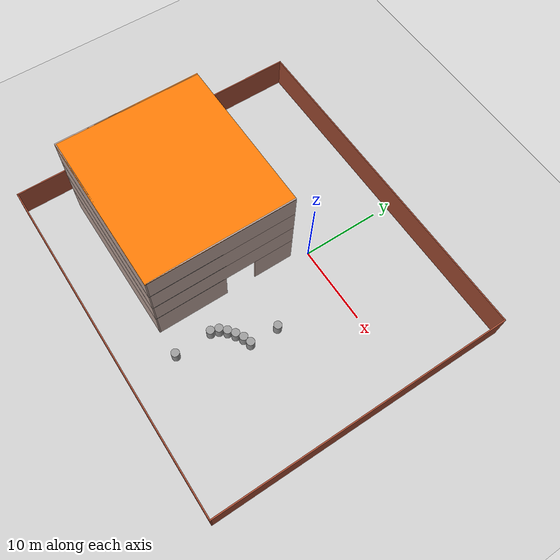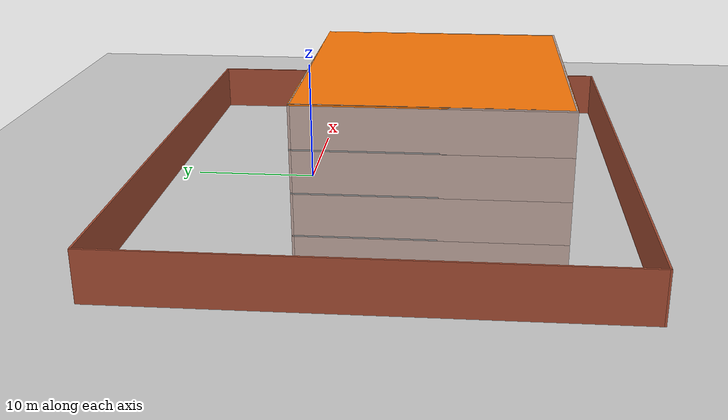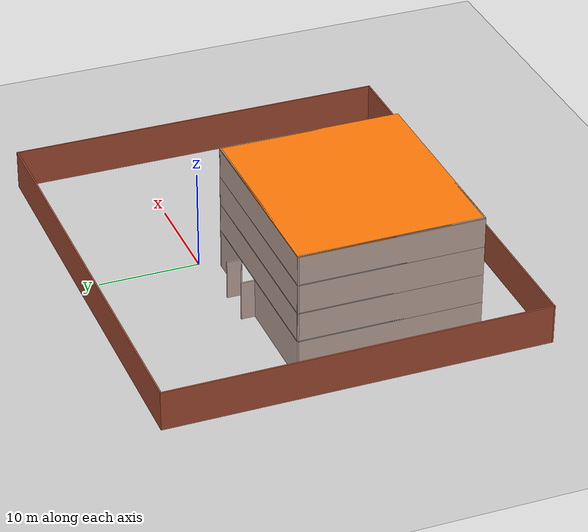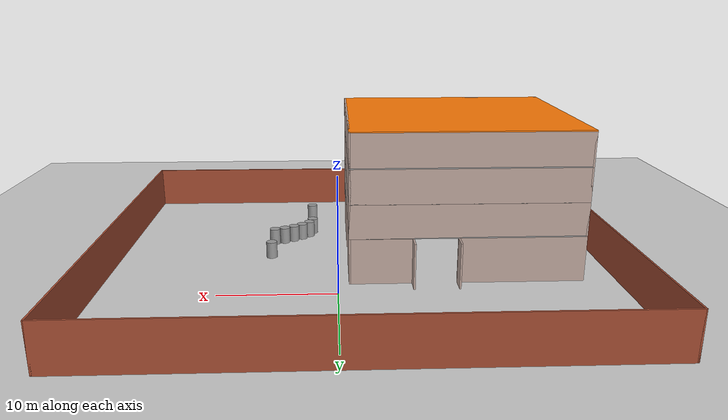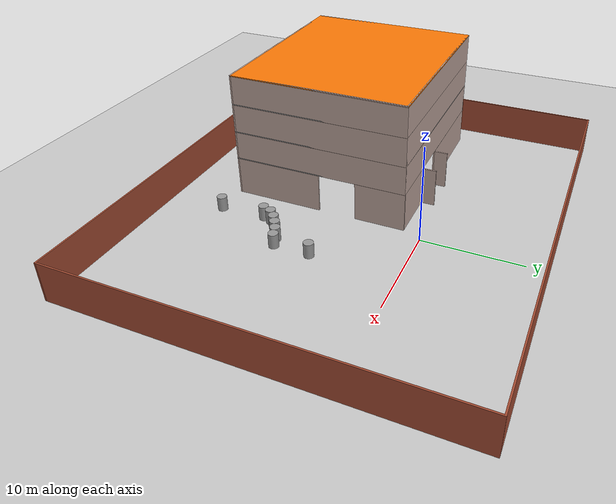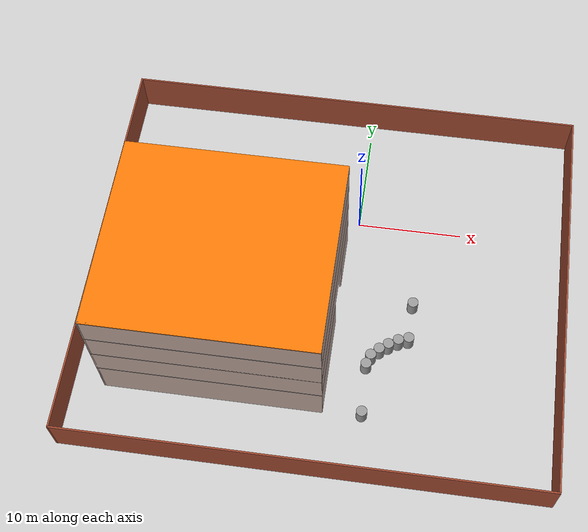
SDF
<sdf version="1.6">
 <world name="default">
  <model name="ground_plane">
   <static>1</static>
   <link name="link">
    <collision name="collision">
     <geometry><plane><normal>0 0 1</normal><size>100 100</size></plane></geometry>
     <surface><friction><ode><mu>100</mu><mu2>50</mu2></ode></friction></surface>
    </collision>
    <visual name="visual">
     <cast_shadows>0</cast_shadows>
     <geometry><plane><normal>0 0 1</normal><size>100 100</size></plane></geometry>
     <material>
      <script><uri>file://media/materials/scripts/gazebo.material</uri><name>Gazebo/Grey</name></script>
     </material>
    </visual>
   </link>
  </model>
  <model name="building2">
   <pose>-11 -10.325 0 0 -0 0</pose>
   <link name="Floor_0">
    <collision name="Floor_0_Collision">
     <geometry><box><size>20.15 18.15 0.1</size></box></geometry>
     <pose>0 0 0.05 0 -0 0</pose>
    </collision>
    <visual name="Floor_0_Visual">
     <pose>0 0 0.05 0 -0 0</pose>
     <geometry><box><size>20.15 18.15 0.1</size></box></geometry>
     <material>
      <script><uri>file://media/materials/scripts/gazebo.material</uri><name>Gazebo/Grey</name></script>
      <ambient>1 1 1 1</ambient>
     </material>
     <meta><layer>1</layer></meta>
    </visual>
    <pose>-0 -0.675 4 0 -0 0</pose>
   </link>
   <link name="Floor_2">
    <collision name="Floor_2_Collision">
     <geometry><box><size>20.15 18.15 0.1</size></box></geometry>
     <pose>0 0 0.05 0 -0 0</pose>
    </collision>
    <visual name="Floor_2_Visual">
     <pose>0 0 0.05 0 -0 0</pose>
     <geometry><box><size>20.15 18.15 0.1</size></box></geometry>
     <material>
      <script><uri>file://media/materials/scripts/gazebo.material</uri><name>Gazebo/Grey</name></script>
      <ambient>1 1 1 1</ambient>
     </material>
     <meta><layer>2</layer></meta>
    </visual>
    <pose>-0 -0.675 7 0 -0 0</pose>
   </link>
   <link name="Floor_3">
    <collision name="Floor_3_Collision">
     <geometry><box><size>20.15 18.15 0.1</size></box></geometry>
     <pose>0 0 0.05 0 -0 0</pose>
    </collision>
    <visual name="Floor_3_Visual">
     <pose>0 0 0.05 0 -0 0</pose>
     <geometry><box><size>20.15 18.15 0.1</size></box></geometry>
     <material>
      <script><uri>file://media/materials/scripts/gazebo.material</uri><name>Gazebo/Grey</name></script>
      <ambient>1 1 1 1</ambient>
     </material>
     <meta><layer>3</layer></meta>
    </visual>
    <pose>-0 -0.675 10 0 -0 0</pose>
   </link>
   <link name="Floor_8">
    <collision name="Floor_8_Collision">
     <geometry><box><size>20.15 18.15 0.1</size></box></geometry>
     <pose>0 0 0.05 0 -0 0</pose>
    </collision>
    <visual name="Floor_8_Visual">
     <pose>0 0 0.05 0 -0 0</pose>
     <geometry><box><size>20.15 18.15 0.1</size></box></geometry>
     <material>
      <script><uri>file://media/materials/scripts/gazebo.material</uri><name>Gazebo/Grey</name></script>
      <ambient>0.996078 0.47451 0.0196078 1</ambient>
     </material>
     <meta><layer>4</layer></meta>
    </visual>
    <pose>-0 -0.675 13 0 -0 0</pose>
   </link>
   <link name="Wall_11">
    <collision name="Wall_11_Collision">
     <geometry><box><size>1.5 0.15 4</size></box></geometry>
     <pose>0 0 2 0 -0 0</pose>
    </collision>
    <visual name="Wall_11_Visual">
     <pose>0 0 2 0 -0 0</pose>
     <geometry><box><size>1.5 0.15 4</size></box></geometry>
     <material>
      <script><uri>file://media/materials/scripts/gazebo.material</uri><name>Gazebo/Grey</name></script>
      <ambient>0.760784 0.662745 0.627451 1</ambient>
     </material>
     <meta><layer>0</layer></meta>
    </visual>
    <pose>0.8 9 0 0 -0 -1.5708</pose>
   </link>
   <link name="Wall_12">
    <collision name="Wall_12_Collision">
     <geometry><box><size>10.95 0.15 4</size></box></geometry>
     <pose>0 0 2 0 -0 0</pose>
    </collision>
    <visual name="Wall_12_Visual">
     <pose>0 0 2 0 -0 0</pose>
     <geometry><box><size>10.95 0.15 4</size></box></geometry>
     <material>
      <script><uri>file://media/materials/scripts/gazebo.material</uri><name>Gazebo/Grey</name></script>
      <ambient>0.760784 0.662745 0.627451 1</ambient>
     </material>
     <meta><layer>0</layer></meta>
    </visual>
    <pose>-4.6 8.325 0 0 -0 3.14159</pose>
   </link>
   <link name="Wall_14">
    <collision name="Wall_14_Collision">
     <geometry><box><size>18.15 0.15 4</size></box></geometry>
     <pose>0 0 2 0 -0 0</pose>
    </collision>
    <visual name="Wall_14_Visual">
     <pose>0 0 2 0 -0 0</pose>
     <geometry><box><size>18.15 0.15 4</size></box></geometry>
     <material>
      <script><uri>file://media/materials/scripts/gazebo.material</uri><name>Gazebo/Grey</name></script>
      <ambient>0.760784 0.662745 0.627451 1</ambient>
     </material>
     <meta><layer>0</layer></meta>
    </visual>
    <pose>-10 -0.675 0 0 -0 -1.5708</pose>
   </link>
   <link name="Wall_16">
    <collision name="Wall_16_Collision">
     <geometry><box><size>20.15 0.15 4</size></box></geometry>
     <pose>0 0 2 0 -0 0</pose>
    </collision>
    <visual name="Wall_16_Visual">
     <pose>0 0 2 0 -0 0</pose>
     <geometry><box><size>20.15 0.15 4</size></box></geometry>
     <material>
      <script><uri>file://media/materials/scripts/gazebo.material</uri><name>Gazebo/Grey</name></script>
      <ambient>0.760784 0.662745 0.627451 1</ambient>
     </material>
     <meta><layer>0</layer></meta>
    </visual>
    <pose>-0 -9.675 0 0 -0 0</pose>
   </link>
   <link name="Wall_24">
    <collision name="Wall_24_Collision">
     <geometry><box><size>18.15 0.15 3</size></box></geometry>
     <pose>0 0 1.5 0 -0 0</pose>
    </collision>
    <visual name="Wall_24_Visual">
     <pose>0 0 1.5 0 -0 0</pose>
     <geometry><box><size>18.15 0.15 3</size></box></geometry>
     <material>
      <script><uri>file://media/materials/scripts/gazebo.material</uri><name>Gazebo/Grey</name></script>
      <ambient>0.760784 0.662745 0.627451 1</ambient>
     </material>
     <meta><layer>1</layer></meta>
    </visual>
    <pose>-10 -0.675 4 0 -0 -1.5708</pose>
   </link>
   <link name="Wall_25">
    <collision name="Wall_25_Collision">
     <geometry><box><size>20.15 0.15 3</size></box></geometry>
     <pose>0 0 1.5 0 -0 0</pose>
    </collision>
    <visual name="Wall_25_Visual">
     <pose>0 0 1.5 0 -0 0</pose>
     <geometry><box><size>20.15 0.15 3</size></box></geometry>
     <material>
      <script><uri>file://media/materials/scripts/gazebo.material</uri><name>Gazebo/Grey</name></script>
      <ambient>0.760784 0.662745 0.627451 1</ambient>
     </material>
     <meta><layer>1</layer></meta>
    </visual>
    <pose>-0 -9.675 4 0 -0 0</pose>
   </link>
   <link name="Wall_31">
    <collision name="Wall_31_Collision">
     <geometry><box><size>20.15 0.15 3</size></box></geometry>
     <pose>0 0 1.5 0 -0 0</pose>
    </collision>
    <visual name="Wall_31_Visual">
     <pose>0 0 1.5 0 -0 0</pose>
     <geometry><box><size>20.15 0.15 3</size></box></geometry>
     <material>
      <script><uri>file://media/materials/scripts/gazebo.material</uri><name>Gazebo/Grey</name></script>
      <ambient>0.760784 0.662745 0.627451 1</ambient>
     </material>
     <meta><layer>1</layer></meta>
    </visual>
    <pose>-0 8.325 4 0 -0 0</pose>
   </link>
   <link name="Wall_33">
    <collision name="Wall_33_Collision">
     <geometry><box><size>18 0.15 3</size></box></geometry>
     <pose>0 0 1.5 0 -0 0</pose>
    </collision>
    <visual name="Wall_33_Visual">
     <pose>0 0 1.5 0 -0 0</pose>
     <geometry><box><size>18 0.15 3</size></box></geometry>
     <material>
      <script><uri>file://media/materials/scripts/gazebo.material</uri><name>Gazebo/Grey</name></script>
      <ambient>0.760784 0.662745 0.627451 1</ambient>
     </material>
     <meta><layer>1</layer></meta>
    </visual>
    <pose>10 -0.6 4 0 -0 -1.5708</pose>
   </link>
   <link name="Wall_4">
    <collision name="Wall_4_Collision">
     <geometry><box><size>5.15 0.15 4</size></box></geometry>
     <pose>0 0 2 0 -0 0</pose>
    </collision>
    <visual name="Wall_4_Visual">
     <pose>0 0 2 0 -0 0</pose>
     <geometry><box><size>5.15 0.15 4</size></box></geometry>
     <material>
      <script><uri>file://media/materials/scripts/gazebo.material</uri><name>Gazebo/Grey</name></script>
      <ambient>0.760784 0.662745 0.627451 1</ambient>
     </material>
     <meta><layer>0</layer></meta>
    </visual>
    <pose>10 5.825 0 0 -0 -1.5708</pose>
   </link>
   <link name="Wall_42">
    <collision name="Wall_42_Collision">
     <geometry><box><size>18.15 0.15 3</size></box></geometry>
     <pose>0 0 1.5 0 -0 0</pose>
    </collision>
    <visual name="Wall_42_Visual">
     <pose>0 0 1.5 0 -0 0</pose>
     <geometry><box><size>18.15 0.15 3</size></box></geometry>
     <material>
      <script><uri>file://media/materials/scripts/gazebo.material</uri><name>Gazebo/Grey</name></script>
      <ambient>0.760784 0.662745 0.627451 1</ambient>
     </material>
     <meta><layer>2</layer></meta>
    </visual>
    <pose>-10 -0.675 7 0 -0 -1.5708</pose>
   </link>
   <link name="Wall_43">
    <collision name="Wall_43_Collision">
     <geometry><box><size>20.15 0.15 3</size></box></geometry>
     <pose>0 0 1.5 0 -0 0</pose>
    </collision>
    <visual name="Wall_43_Visual">
     <pose>0 0 1.5 0 -0 0</pose>
     <geometry><box><size>20.15 0.15 3</size></box></geometry>
     <material>
      <script><uri>file://media/materials/scripts/gazebo.material</uri><name>Gazebo/Grey</name></script>
      <ambient>0.760784 0.662745 0.627451 1</ambient>
     </material>
     <meta><layer>2</layer></meta>
    </visual>
    <pose>-0 -9.675 7 0 -0 0</pose>
   </link>
   <link name="Wall_44">
    <collision name="Wall_44_Collision">
     <geometry><box><size>20.15 0.15 3</size></box></geometry>
     <pose>0 0 1.5 0 -0 0</pose>
    </collision>
    <visual name="Wall_44_Visual">
     <pose>0 0 1.5 0 -0 0</pose>
     <geometry><box><size>20.15 0.15 3</size></box></geometry>
     <material>
      <script><uri>file://media/materials/scripts/gazebo.material</uri><name>Gazebo/Grey</name></script>
      <ambient>0.760784 0.662745 0.627451 1</ambient>
     </material>
     <meta><layer>2</layer></meta>
    </visual>
    <pose>-0 8.325 7 0 -0 0</pose>
   </link>
   <link name="Wall_45">
    <collision name="Wall_45_Collision">
     <geometry><box><size>18 0.15 3</size></box></geometry>
     <pose>0 0 1.5 0 -0 0</pose>
    </collision>
    <visual name="Wall_45_Visual">
     <pose>0 0 1.5 0 -0 0</pose>
     <geometry><box><size>18 0.15 3</size></box></geometry>
     <material>
      <script><uri>file://media/materials/scripts/gazebo.material</uri><name>Gazebo/Grey</name></script>
      <ambient>0.760784 0.662745 0.627451 1</ambient>
     </material>
     <meta><layer>2</layer></meta>
    </visual>
    <pose>10 -0.6 7 0 -0 -1.5708</pose>
   </link>
   <link name="Wall_46">
    <collision name="Wall_46_Collision">
     <geometry><box><size>18.15 0.15 3</size></box></geometry>
     <pose>0 0 1.5 0 -0 0</pose>
    </collision>
    <visual name="Wall_46_Visual">
     <pose>0 0 1.5 0 -0 0</pose>
     <geometry><box><size>18.15 0.15 3</size></box></geometry>
     <material>
      <script><uri>file://media/materials/scripts/gazebo.material</uri><name>Gazebo/Grey</name></script>
      <ambient>0.760784 0.662745 0.627451 1</ambient>
     </material>
     <meta><layer>3</layer></meta>
    </visual>
    <pose>-10 -0.675 10 0 -0 -1.5708</pose>
   </link>
   <link name="Wall_47">
    <collision name="Wall_47_Collision">
     <geometry><box><size>20.15 0.15 3</size></box></geometry>
     <pose>0 0 1.5 0 -0 0</pose>
    </collision>
    <visual name="Wall_47_Visual">
     <pose>0 0 1.5 0 -0 0</pose>
     <geometry><box><size>20.15 0.15 3</size></box></geometry>
     <material>
      <script><uri>file://media/materials/scripts/gazebo.material</uri><name>Gazebo/Grey</name></script>
      <ambient>0.760784 0.662745 0.627451 1</ambient>
     </material>
     <meta><layer>3</layer></meta>
    </visual>
    <pose>-0 -9.675 10 0 -0 0</pose>
   </link>
   <link name="Wall_48">
    <collision name="Wall_48_Collision">
     <geometry><box><size>20.15 0.15 3</size></box></geometry>
     <pose>0 0 1.5 0 -0 0</pose>
    </collision>
    <visual name="Wall_48_Visual">
     <pose>0 0 1.5 0 -0 0</pose>
     <geometry><box><size>20.15 0.15 3</size></box></geometry>
     <material>
      <script><uri>file://media/materials/scripts/gazebo.material</uri><name>Gazebo/Grey</name></script>
      <ambient>0.760784 0.662745 0.627451 1</ambient>
     </material>
     <meta><layer>3</layer></meta>
    </visual>
    <pose>-0 8.325 10 0 -0 0</pose>
   </link>
   <link name="Wall_49">
    <collision name="Wall_49_Collision">
     <geometry><box><size>18 0.15 3</size></box></geometry>
     <pose>0 0 1.5 0 -0 0</pose>
    </collision>
    <visual name="Wall_49_Visual">
     <pose>0 0 1.5 0 -0 0</pose>
     <geometry><box><size>18 0.15 3</size></box></geometry>
     <material>
      <script><uri>file://media/materials/scripts/gazebo.material</uri><name>Gazebo/Grey</name></script>
      <ambient>0.760784 0.662745 0.627451 1</ambient>
     </material>
     <meta><layer>3</layer></meta>
    </visual>
    <pose>10 -0.6 10 0 -0 -1.5708</pose>
   </link>
   <link name="Wall_6">
    <collision name="Wall_6_Collision">
     <geometry><box><size>9.15 0.15 4</size></box></geometry>
     <pose>0 0 2 0 -0 0</pose>
    </collision>
    <visual name="Wall_6_Visual">
     <pose>0 0 2 0 -0 0</pose>
     <geometry><box><size>9.15 0.15 4</size></box></geometry>
     <material>
      <script><uri>file://media/materials/scripts/gazebo.material</uri><name>Gazebo/Grey</name></script>
      <ambient>0.760784 0.662745 0.627451 1</ambient>
     </material>
     <meta><layer>0</layer></meta>
    </visual>
    <pose>10 -5.175 0 0 -0 -1.5708</pose>
   </link>
   <link name="Wall_76">
    <collision name="Wall_76_Collision">
     <geometry><box><size>18.15 0.15 0.1</size></box></geometry>
     <pose>0 0 0.05 0 -0 0</pose>
    </collision>
    <visual name="Wall_76_Visual">
     <pose>0 0 0.05 0 -0 0</pose>
     <geometry><box><size>18.15 0.15 0.1</size></box></geometry>
     <material>
      <script><uri>file://media/materials/scripts/gazebo.material</uri><name>Gazebo/Grey</name></script>
      <ambient>0.760784 0.662745 0.627451 1</ambient>
     </material>
     <meta><layer>4</layer></meta>
    </visual>
    <pose>-10 -0.675 13 0 -0 -1.5708</pose>
   </link>
   <link name="Wall_77">
    <collision name="Wall_77_Collision">
     <geometry><box><size>20.15 0.15 0.1</size></box></geometry>
     <pose>0 0 0.05 0 -0 0</pose>
    </collision>
    <visual name="Wall_77_Visual">
     <pose>0 0 0.05 0 -0 0</pose>
     <geometry><box><size>20.15 0.15 0.1</size></box></geometry>
     <material>
      <script><uri>file://media/materials/scripts/gazebo.material</uri><name>Gazebo/Grey</name></script>
      <ambient>0.760784 0.662745 0.627451 1</ambient>
     </material>
     <meta><layer>4</layer></meta>
    </visual>
    <pose>-0 -9.675 13 0 -0 0</pose>
   </link>
   <link name="Wall_78">
    <collision name="Wall_78_Collision">
     <geometry><box><size>20.15 0.15 0.1</size></box></geometry>
     <pose>0 0 0.05 0 -0 0</pose>
    </collision>
    <visual name="Wall_78_Visual">
     <pose>0 0 0.05 0 -0 0</pose>
     <geometry><box><size>20.15 0.15 0.1</size></box></geometry>
     <material>
      <script><uri>file://media/materials/scripts/gazebo.material</uri><name>Gazebo/Grey</name></script>
      <ambient>0.760784 0.662745 0.627451 1</ambient>
     </material>
     <meta><layer>4</layer></meta>
    </visual>
    <pose>-0 8.325 13 0 -0 0</pose>
   </link>
   <link name="Wall_79">
    <collision name="Wall_79_Collision">
     <geometry><box><size>18 0.15 0.1</size></box></geometry>
     <pose>0 0 0.05 0 -0 0</pose>
    </collision>
    <visual name="Wall_79_Visual">
     <pose>0 0 0.05 0 -0 0</pose>
     <geometry><box><size>18 0.15 0.1</size></box></geometry>
     <material>
      <script><uri>file://media/materials/scripts/gazebo.material</uri><name>Gazebo/Grey</name></script>
      <ambient>0.760784 0.662745 0.627451 1</ambient>
     </material>
     <meta><layer>4</layer></meta>
    </visual>
    <pose>10 -0.6 13 0 -0 -1.5708</pose>
   </link>
   <link name="Wall_8">
    <collision name="Wall_8_Collision">
     <geometry><box><size>5.5 0.15 4</size></box></geometry>
     <pose>0 0 2 0 -0 0</pose>
    </collision>
    <visual name="Wall_8_Visual">
     <pose>0 0 2 0 -0 0</pose>
     <geometry><box><size>5.5 0.15 4</size></box></geometry>
     <material>
      <script><uri>file://media/materials/scripts/gazebo.material</uri><name>Gazebo/Grey</name></script>
      <ambient>0.760784 0.662745 0.627451 1</ambient>
     </material>
     <meta><layer>0</layer></meta>
    </visual>
    <pose>7.325 8.325 0 0 -0 3.14159</pose>
   </link>
   <link name="Wall_9">
    <collision name="Wall_9_Collision">
     <geometry><box><size>1.5 0.15 4</size></box></geometry>
     <pose>0 0 2 0 -0 0</pose>
    </collision>
    <visual name="Wall_9_Visual">
     <pose>0 0 2 0 -0 0</pose>
     <geometry><box><size>1.5 0.15 4</size></box></geometry>
     <material>
      <script><uri>file://media/materials/scripts/gazebo.material</uri><name>Gazebo/Grey</name></script>
      <ambient>0.760784 0.662745 0.627451 1</ambient>
     </material>
     <meta><layer>0</layer></meta>
    </visual>
    <pose>4.65 9 0 0 -0 1.5708</pose>
   </link>
   <static>1</static>
  </model>
  <model name="wall11">
   <pose>-2 -7 0 0 -0 0</pose>
   <link name="Wall_0">
    <collision name="Wall_0_Collision">
     <geometry><box><size>44.15 0.15 4</size></box></geometry>
     <pose>0 0 2 0 -0 0</pose>
    </collision>
    <visual name="Wall_0_Visual">
     <pose>0 0 2 0 -0 0</pose>
     <geometry><box><size>44.15 0.15 4</size></box></geometry>
     <material>
      <script><uri>file://media/materials/scripts/gazebo.material</uri><name>Gazebo/Bricks</name></script>
      <ambient>1 1 1 1</ambient>
     </material>
     <meta><layer>0</layer></meta>
    </visual>
    <pose>0 19 0 0 -0 0</pose>
   </link>
   <link name="Wall_2">
    <collision name="Wall_2_Collision">
     <geometry><box><size>38.15 0.15 4</size></box></geometry>
     <pose>0 0 2 0 -0 0</pose>
    </collision>
    <visual name="Wall_2_Visual">
     <pose>0 0 2 0 -0 0</pose>
     <geometry><box><size>38.15 0.15 4</size></box></geometry>
     <material>
      <script><uri>file://media/materials/scripts/gazebo.material</uri><name>Gazebo/Bricks</name></script>
      <ambient>1 1 1 1</ambient>
     </material>
     <meta><layer>0</layer></meta>
    </visual>
    <pose>22 0 0 0 -0 -1.5708</pose>
   </link>
   <link name="Wall_4">
    <collision name="Wall_4_Collision">
     <geometry><box><size>44.15 0.15 4</size></box></geometry>
     <pose>0 0 2 0 -0 0</pose>
    </collision>
    <visual name="Wall_4_Visual">
     <pose>0 0 2 0 -0 0</pose>
     <geometry><box><size>44.15 0.15 4</size></box></geometry>
     <material>
      <script><uri>file://media/materials/scripts/gazebo.material</uri><name>Gazebo/Bricks</name></script>
      <ambient>1 1 1 1</ambient>
     </material>
     <meta><layer>0</layer></meta>
    </visual>
    <pose>0 -19 0 0 -0 3.14159</pose>
   </link>
   <link name="Wall_6">
    <collision name="Wall_6_Collision">
     <geometry><box><size>38.15 0.15 4</size></box></geometry>
     <pose>0 0 2 0 -0 0</pose>
    </collision>
    <visual name="Wall_6_Visual">
     <pose>0 0 2 0 -0 0</pose>
     <geometry><box><size>38.15 0.15 4</size></box></geometry>
     <material>
      <script><uri>file://media/materials/scripts/gazebo.material</uri><name>Gazebo/Bricks</name></script>
      <ambient>1 1 1 1</ambient>
     </material>
     <meta><layer>0</layer></meta>
    </visual>
    <pose>-22 0 0 0 -0 1.5708</pose>
   </link>
   <static>1</static>
  </model>
  <model name="cylinder1.5m">
   <link name="link">
    <inertial>
     <mass>1</mass>
     <inertia><ixx>0.145833</ixx><ixy>0</ixy><ixz>0</ixz><iyy>0.145833</iyy><iyz>0</iyz><izz>0.125</izz></inertia>
    </inertial>
    <pose>0 0 0.25 0 -0 0</pose>
    <visual name="visual">
     <geometry><cylinder><radius>0.5</radius><length>1.5</length></cylinder></geometry>
     <material>
      <script><name>Gazebo/Grey</name><uri>file://media/materials/scripts/gazebo.material</uri></script>
      <shader type="pixel"><normal_map>__default__</normal_map></shader>
      <ambient>0.3 0.3 0.3 1</ambient>
      <diffuse>0.7 0.7 0.7 1</diffuse>
      <specular>0.01 0.01 0.01 1</specular>
      <emissive>0 0 0 1</emissive>
     </material>
    </visual>
    <collision name="collision">
     <geometry><cylinder><radius>0.5</radius><length>1</length></cylinder></geometry>
     <surface>
      <friction>
       <ode><mu>1</mu><mu2>1</mu2><fdir1>0 0 0</fdir1><slip1>0</slip1><slip2>0</slip2></ode>
       <torsional>
        <coefficient>1</coefficient>
        <patch_radius>0</patch_radius>
        <surface_radius>0</surface_radius>
        <use_patch_radius>1</use_patch_radius>
        <ode><slip>0</slip></ode>
       </torsional>
      </friction>
      <bounce><restitution_coefficient>0</restitution_coefficient><threshold>1e+06</threshold></bounce>
      <contact>
       <collide_without_contact>0</collide_without_contact>
       <collide_without_contact_bitmask>1</collide_without_contact_bitmask>
       <collide_bitmask>1</collide_bitmask>
       <ode>
        <soft_cfm>0</soft_cfm>
        <soft_erp>0.2</soft_erp>
        <kp>1e+13</kp>
        <kd>1</kd>
        <max_vel>0.01</max_vel>
        <min_depth>0</min_depth>
       </ode>
       <bullet>
        <split_impulse>1</split_impulse>
        <split_impulse_penetration_threshold>-0.01</split_impulse_penetration_threshold>
        <soft_cfm>0</soft_cfm>
        <soft_erp>0.2</soft_erp>
        <kp>1e+13</kp>
        <kd>1</kd>
       </bullet>
      </contact>
     </surface>
    </collision>
   </link>
   <static>0</static>
   <pose>2.61988 -20 0.5 0 -0 0</pose>
  </model>
  <model name="cylinder1.5m_clone_3">
   <link name="link">
    <inertial>
     <mass>1</mass>
     <inertia><ixx>0.145833</ixx><ixy>0</ixy><ixz>0</ixz><iyy>0.145833</iyy><iyz>0</iyz><izz>0.125</izz></inertia>
    </inertial>
    <pose>0 0 0.25 0 -0 0</pose>
    <visual name="visual">
     <geometry><cylinder><radius>0.5</radius><length>1.5</length></cylinder></geometry>
     <material>
      <script><name>Gazebo/Grey</name><uri>file://media/materials/scripts/gazebo.material</uri></script>
      <shader type="pixel"><normal_map>__default__</normal_map></shader>
      <ambient>0.3 0.3 0.3 1</ambient>
      <diffuse>0.7 0.7 0.7 1</diffuse>
      <specular>0.01 0.01 0.01 1</specular>
      <emissive>0 0 0 1</emissive>
     </material>
    </visual>
    <collision name="collision">
     <geometry><cylinder><radius>0.5</radius><length>1</length></cylinder></geometry>
     <surface>
      <friction>
       <ode><mu>1</mu><mu2>1</mu2><fdir1>0 0 0</fdir1><slip1>0</slip1><slip2>0</slip2></ode>
       <torsional>
        <coefficient>1</coefficient>
        <patch_radius>0</patch_radius>
        <surface_radius>0</surface_radius>
        <use_patch_radius>1</use_patch_radius>
        <ode><slip>0</slip></ode>
       </torsional>
      </friction>
      <bounce><restitution_coefficient>0</restitution_coefficient><threshold>1e+06</threshold></bounce>
      <contact>
       <collide_without_contact>0</collide_without_contact>
       <collide_without_contact_bitmask>1</collide_without_contact_bitmask>
       <collide_bitmask>1</collide_bitmask>
       <ode>
        <soft_cfm>0</soft_cfm>
        <soft_erp>0.2</soft_erp>
        <kp>1e+13</kp>
        <kd>1</kd>
        <max_vel>0.01</max_vel>
        <min_depth>0</min_depth>
       </ode>
       <bullet>
        <split_impulse>1</split_impulse>
        <split_impulse_penetration_threshold>-0.01</split_impulse_penetration_threshold>
        <soft_cfm>0</soft_cfm>
        <soft_erp>0.2</soft_erp>
        <kp>1e+13</kp>
        <kd>1</kd>
       </bullet>
      </contact>
     </surface>
    </collision>
   </link>
   <static>0</static>
   <pose>2.46274 -15.3169 0.5 0 -0 0</pose>
  </model>
  <model name="cylinder1.5m_clone_4">
   <link name="link">
    <inertial>
     <mass>1</mass>
     <inertia><ixx>0.145833</ixx><ixy>0</ixy><ixz>0</ixz><iyy>0.145833</iyy><iyz>0</iyz><izz>0.125</izz></inertia>
    </inertial>
    <pose>0 0 0.25 0 -0 0</pose>
    <visual name="visual">
     <geometry><cylinder><radius>0.5</radius><length>1.5</length></cylinder></geometry>
     <material>
      <script><name>Gazebo/Grey</name><uri>file://media/materials/scripts/gazebo.material</uri></script>
      <shader type="pixel"><normal_map>__default__</normal_map></shader>
      <ambient>0.3 0.3 0.3 1</ambient>
      <diffuse>0.7 0.7 0.7 1</diffuse>
      <specular>0.01 0.01 0.01 1</specular>
      <emissive>0 0 0 1</emissive>
     </material>
    </visual>
    <collision name="collision">
     <geometry><cylinder><radius>0.5</radius><length>1</length></cylinder></geometry>
     <surface>
      <friction>
       <ode><mu>1</mu><mu2>1</mu2><fdir1>0 0 0</fdir1><slip1>0</slip1><slip2>0</slip2></ode>
       <torsional>
        <coefficient>1</coefficient>
        <patch_radius>0</patch_radius>
        <surface_radius>0</surface_radius>
        <use_patch_radius>1</use_patch_radius>
        <ode><slip>0</slip></ode>
       </torsional>
      </friction>
      <bounce><restitution_coefficient>0</restitution_coefficient><threshold>1e+06</threshold></bounce>
      <contact>
       <collide_without_contact>0</collide_without_contact>
       <collide_without_contact_bitmask>1</collide_without_contact_bitmask>
       <collide_bitmask>1</collide_bitmask>
       <ode>
        <soft_cfm>0</soft_cfm>
        <soft_erp>0.2</soft_erp>
        <kp>1e+13</kp>
        <kd>1</kd>
        <max_vel>0.01</max_vel>
        <min_depth>0</min_depth>
       </ode>
       <bullet>
        <split_impulse>1</split_impulse>
        <split_impulse_penetration_threshold>-0.01</split_impulse_penetration_threshold>
        <soft_cfm>0</soft_cfm>
        <soft_erp>0.2</soft_erp>
        <kp>1e+13</kp>
        <kd>1</kd>
       </bullet>
      </contact>
     </surface>
    </collision>
   </link>
   <static>0</static>
   <pose>2.78004 -14.3644 0.5 0 -0 0</pose>
  </model>
  <model name="cylinder1.5m_clone_5">
   <link name="link">
    <inertial>
     <mass>1</mass>
     <inertia><ixx>0.145833</ixx><ixy>0</ixy><ixz>0</ixz><iyy>0.145833</iyy><iyz>0</iyz><izz>0.125</izz></inertia>
    </inertial>
    <pose>0 0 0.25 0 -0 0</pose>
    <visual name="visual">
     <geometry><cylinder><radius>0.5</radius><length>1.5</length></cylinder></geometry>
     <material>
      <script><name>Gazebo/Grey</name><uri>file://media/materials/scripts/gazebo.material</uri></script>
      <shader type="pixel"><normal_map>__default__</normal_map></shader>
      <ambient>0.3 0.3 0.3 1</ambient>
      <diffuse>0.7 0.7 0.7 1</diffuse>
      <specular>0.01 0.01 0.01 1</specular>
      <emissive>0 0 0 1</emissive>
     </material>
    </visual>
    <collision name="collision">
     <geometry><cylinder><radius>0.5</radius><length>1</length></cylinder></geometry>
     <surface>
      <friction>
       <ode><mu>1</mu><mu2>1</mu2><fdir1>0 0 0</fdir1><slip1>0</slip1><slip2>0</slip2></ode>
       <torsional>
        <coefficient>1</coefficient>
        <patch_radius>0</patch_radius>
        <surface_radius>0</surface_radius>
        <use_patch_radius>1</use_patch_radius>
        <ode><slip>0</slip></ode>
       </torsional>
      </friction>
      <bounce><restitution_coefficient>0</restitution_coefficient><threshold>1e+06</threshold></bounce>
      <contact>
       <collide_without_contact>0</collide_without_contact>
       <collide_without_contact_bitmask>1</collide_without_contact_bitmask>
       <collide_bitmask>1</collide_bitmask>
       <ode>
        <soft_cfm>0</soft_cfm>
        <soft_erp>0.2</soft_erp>
        <kp>1e+13</kp>
        <kd>1</kd>
        <max_vel>0.01</max_vel>
        <min_depth>0</min_depth>
       </ode>
       <bullet>
        <split_impulse>1</split_impulse>
        <split_impulse_penetration_threshold>-0.01</split_impulse_penetration_threshold>
        <soft_cfm>0</soft_cfm>
        <soft_erp>0.2</soft_erp>
        <kp>1e+13</kp>
        <kd>1</kd>
       </bullet>
      </contact>
     </surface>
    </collision>
   </link>
   <static>0</static>
   <pose>3.48146 -13.6596 0.5 0 -0 0</pose>
  </model>
  <model name="cylinder1.5m_clone_6">
   <link name="link">
    <inertial>
     <mass>1</mass>
     <inertia><ixx>0.145833</ixx><ixy>0</ixy><ixz>0</ixz><iyy>0.145833</iyy><iyz>0</iyz><izz>0.125</izz></inertia>
    </inertial>
    <pose>0 0 0.25 0 -0 0</pose>
    <visual name="visual">
     <geometry><cylinder><radius>0.5</radius><length>1.5</length></cylinder></geometry>
     <material>
      <script><name>Gazebo/Grey</name><uri>file://media/materials/scripts/gazebo.material</uri></script>
      <shader type="pixel"><normal_map>__default__</normal_map></shader>
      <ambient>0.3 0.3 0.3 1</ambient>
      <diffuse>0.7 0.7 0.7 1</diffuse>
      <specular>0.01 0.01 0.01 1</specular>
      <emissive>0 0 0 1</emissive>
     </material>
    </visual>
    <collision name="collision">
     <geometry><cylinder><radius>0.5</radius><length>1</length></cylinder></geometry>
     <surface>
      <friction>
       <ode><mu>1</mu><mu2>1</mu2><fdir1>0 0 0</fdir1><slip1>0</slip1><slip2>0</slip2></ode>
       <torsional>
        <coefficient>1</coefficient>
        <patch_radius>0</patch_radius>
        <surface_radius>0</surface_radius>
        <use_patch_radius>1</use_patch_radius>
        <ode><slip>0</slip></ode>
       </torsional>
      </friction>
      <bounce><restitution_coefficient>0</restitution_coefficient><threshold>1e+06</threshold></bounce>
      <contact>
       <collide_without_contact>0</collide_without_contact>
       <collide_without_contact_bitmask>1</collide_without_contact_bitmask>
       <collide_bitmask>1</collide_bitmask>
       <ode>
        <soft_cfm>0</soft_cfm>
        <soft_erp>0.2</soft_erp>
        <kp>1e+13</kp>
        <kd>1</kd>
        <max_vel>0.01</max_vel>
        <min_depth>0</min_depth>
       </ode>
       <bullet>
        <split_impulse>1</split_impulse>
        <split_impulse_penetration_threshold>-0.01</split_impulse_penetration_threshold>
        <soft_cfm>0</soft_cfm>
        <soft_erp>0.2</soft_erp>
        <kp>1e+13</kp>
        <kd>1</kd>
       </bullet>
      </contact>
     </surface>
    </collision>
   </link>
   <static>0</static>
   <pose>4.26908 -13.0841 0.5 0 -0 0</pose>
  </model>
  <model name="cylinder1.5m_clone_7">
   <link name="link">
    <inertial>
     <mass>1</mass>
     <inertia><ixx>0.145833</ixx><ixy>0</ixy><ixz>0</ixz><iyy>0.145833</iyy><iyz>0</iyz><izz>0.125</izz></inertia>
    </inertial>
    <pose>0 0 0.25 0 -0 0</pose>
    <visual name="visual">
     <geometry><cylinder><radius>0.5</radius><length>1.5</length></cylinder></geometry>
     <material>
      <script><name>Gazebo/Grey</name><uri>file://media/materials/scripts/gazebo.material</uri></script>
      <shader type="pixel"><normal_map>__default__</normal_map></shader>
      <ambient>0.3 0.3 0.3 1</ambient>
      <diffuse>0.7 0.7 0.7 1</diffuse>
      <specular>0.01 0.01 0.01 1</specular>
      <emissive>0 0 0 1</emissive>
     </material>
    </visual>
    <collision name="collision">
     <geometry><cylinder><radius>0.5</radius><length>1</length></cylinder></geometry>
     <surface>
      <friction>
       <ode><mu>1</mu><mu2>1</mu2><fdir1>0 0 0</fdir1><slip1>0</slip1><slip2>0</slip2></ode>
       <torsional>
        <coefficient>1</coefficient>
        <patch_radius>0</patch_radius>
        <surface_radius>0</surface_radius>
        <use_patch_radius>1</use_patch_radius>
        <ode><slip>0</slip></ode>
       </torsional>
      </friction>
      <bounce><restitution_coefficient>0</restitution_coefficient><threshold>1e+06</threshold></bounce>
      <contact>
       <collide_without_contact>0</collide_without_contact>
       <collide_without_contact_bitmask>1</collide_without_contact_bitmask>
       <collide_bitmask>1</collide_bitmask>
       <ode>
        <soft_cfm>0</soft_cfm>
        <soft_erp>0.2</soft_erp>
        <kp>1e+13</kp>
        <kd>1</kd>
        <max_vel>0.01</max_vel>
        <min_depth>0</min_depth>
       </ode>
       <bullet>
        <split_impulse>1</split_impulse>
        <split_impulse_penetration_threshold>-0.01</split_impulse_penetration_threshold>
        <soft_cfm>0</soft_cfm>
        <soft_erp>0.2</soft_erp>
        <kp>1e+13</kp>
        <kd>1</kd>
       </bullet>
      </contact>
     </surface>
    </collision>
   </link>
   <static>0</static>
   <pose>5.13352 -12.5607 0.5 0 -0 0</pose>
  </model>
  <model name="cylinder1.5m_clone_8">
   <link name="link">
    <inertial>
     <mass>1</mass>
     <inertia><ixx>0.145833</ixx><ixy>0</ixy><ixz>0</ixz><iyy>0.145833</iyy><iyz>0</iyz><izz>0.125</izz></inertia>
    </inertial>
    <pose>0 0 0.25 0 -0 0</pose>
    <visual name="visual">
     <geometry><cylinder><radius>0.5</radius><length>1.5</length></cylinder></geometry>
     <material>
      <script><name>Gazebo/Grey</name><uri>file://media/materials/scripts/gazebo.material</uri></script>
      <shader type="pixel"><normal_map>__default__</normal_map></shader>
      <ambient>0.3 0.3 0.3 1</ambient>
      <diffuse>0.7 0.7 0.7 1</diffuse>
      <specular>0.01 0.01 0.01 1</specular>
      <emissive>0 0 0 1</emissive>
     </material>
    </visual>
    <collision name="collision">
     <geometry><cylinder><radius>0.5</radius><length>1</length></cylinder></geometry>
     <surface>
      <friction>
       <ode><mu>1</mu><mu2>1</mu2><fdir1>0 0 0</fdir1><slip1>0</slip1><slip2>0</slip2></ode>
       <torsional>
        <coefficient>1</coefficient>
        <patch_radius>0</patch_radius>
        <surface_radius>0</surface_radius>
        <use_patch_radius>1</use_patch_radius>
        <ode><slip>0</slip></ode>
       </torsional>
      </friction>
      <bounce><restitution_coefficient>0</restitution_coefficient><threshold>1e+06</threshold></bounce>
      <contact>
       <collide_without_contact>0</collide_without_contact>
       <collide_without_contact_bitmask>1</collide_without_contact_bitmask>
       <collide_bitmask>1</collide_bitmask>
       <ode>
        <soft_cfm>0</soft_cfm>
        <soft_erp>0.2</soft_erp>
        <kp>1e+13</kp>
        <kd>1</kd>
        <max_vel>0.01</max_vel>
        <min_depth>0</min_depth>
       </ode>
       <bullet>
        <split_impulse>1</split_impulse>
        <split_impulse_penetration_threshold>-0.01</split_impulse_penetration_threshold>
        <soft_cfm>0</soft_cfm>
        <soft_erp>0.2</soft_erp>
        <kp>1e+13</kp>
        <kd>1</kd>
       </bullet>
      </contact>
     </surface>
    </collision>
   </link>
   <static>0</static>
   <pose>6.0765 -12.2332 0.5 0 -0 0</pose>
  </model>
  <model name="cylinder1.5m_clone_14">
   <link name="link">
    <inertial>
     <mass>1</mass>
     <inertia><ixx>0.145833</ixx><ixy>0</ixy><ixz>0</ixz><iyy>0.145833</iyy><iyz>0</iyz><izz>0.125</izz></inertia>
    </inertial>
    <pose>0 0 0.25 0 -0 0</pose>
    <visual name="visual">
     <geometry><cylinder><radius>0.5</radius><length>1.5</length></cylinder></geometry>
     <material>
      <script><name>Gazebo/Grey</name><uri>file://media/materials/scripts/gazebo.material</uri></script>
      <shader type="pixel"><normal_map>__default__</normal_map></shader>
      <ambient>0.3 0.3 0.3 1</ambient>
      <diffuse>0.7 0.7 0.7 1</diffuse>
      <specular>0.01 0.01 0.01 1</specular>
      <emissive>0 0 0 1</emissive>
     </material>
    </visual>
    <collision name="collision">
     <geometry><cylinder><radius>0.5</radius><length>1</length></cylinder></geometry>
     <surface>
      <friction>
       <ode><mu>1</mu><mu2>1</mu2><fdir1>0 0 0</fdir1><slip1>0</slip1><slip2>0</slip2></ode>
       <torsional>
        <coefficient>1</coefficient>
        <patch_radius>0</patch_radius>
        <surface_radius>0</surface_radius>
        <use_patch_radius>1</use_patch_radius>
        <ode><slip>0</slip></ode>
       </torsional>
      </friction>
      <bounce><restitution_coefficient>0</restitution_coefficient><threshold>1e+06</threshold></bounce>
      <contact>
       <collide_without_contact>0</collide_without_contact>
       <collide_without_contact_bitmask>1</collide_without_contact_bitmask>
       <collide_bitmask>1</collide_bitmask>
       <ode>
        <soft_cfm>0</soft_cfm>
        <soft_erp>0.2</soft_erp>
        <kp>1e+13</kp>
        <kd>1</kd>
        <max_vel>0.01</max_vel>
        <min_depth>0</min_depth>
       </ode>
       <bullet>
        <split_impulse>1</split_impulse>
        <split_impulse_penetration_threshold>-0.01</split_impulse_penetration_threshold>
        <soft_cfm>0</soft_cfm>
        <soft_erp>0.2</soft_erp>
        <kp>1e+13</kp>
        <kd>1</kd>
       </bullet>
      </contact>
     </surface>
    </collision>
   </link>
   <static>0</static>
   <pose>6.107 -8.58026 0.5 0 -0 0</pose>
  </model>
 </world>
</sdf>
